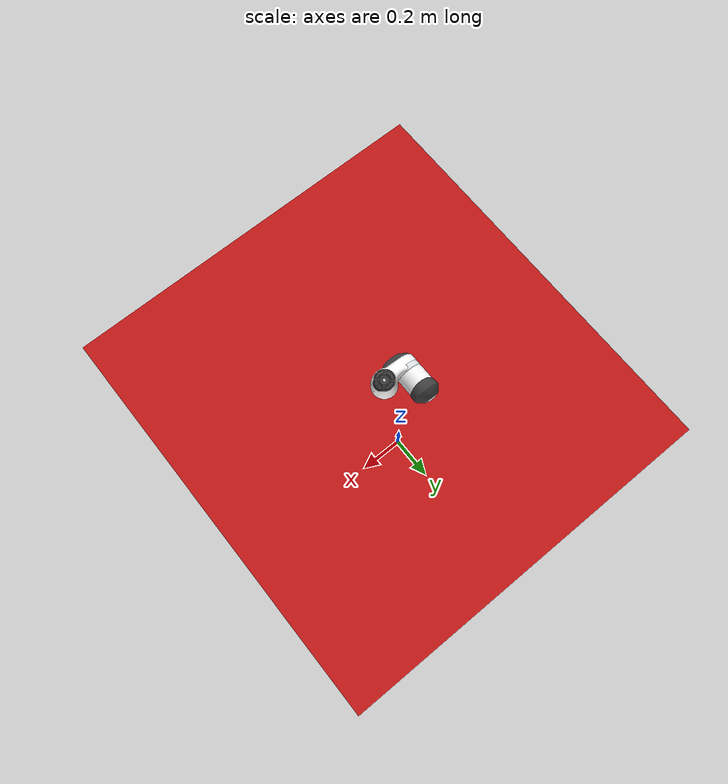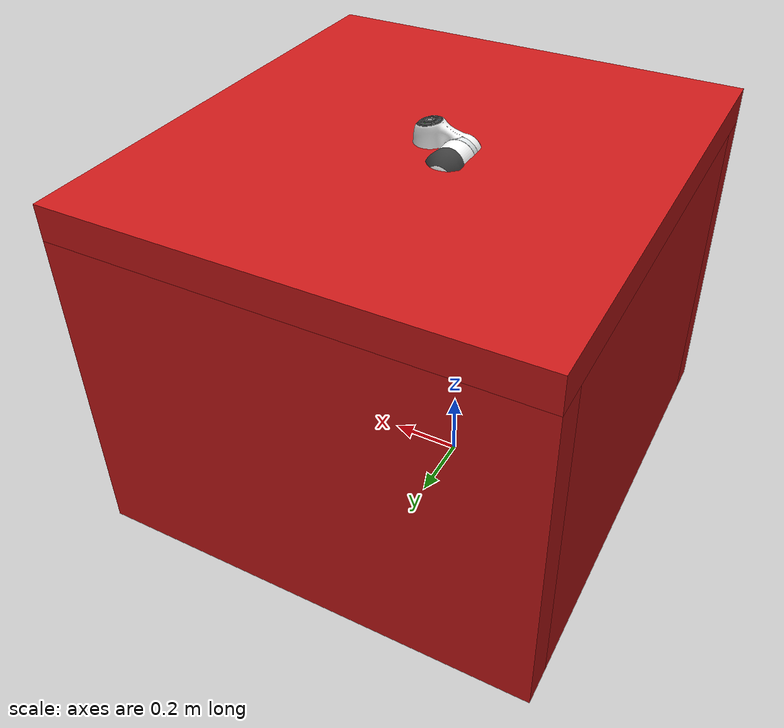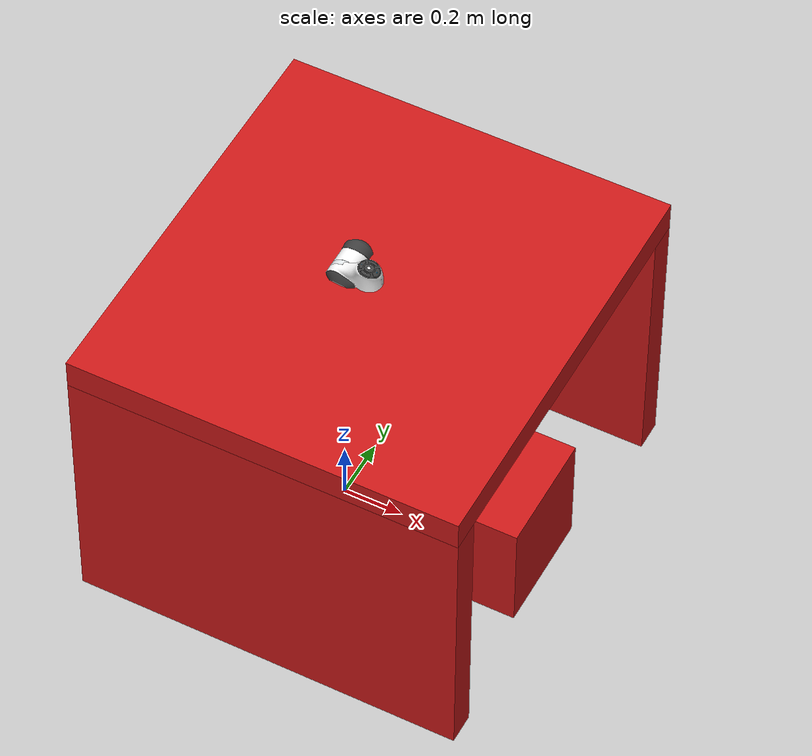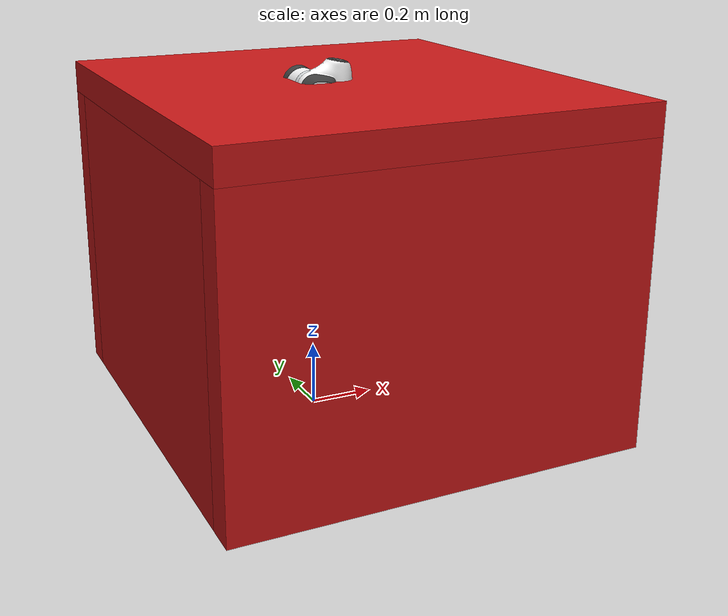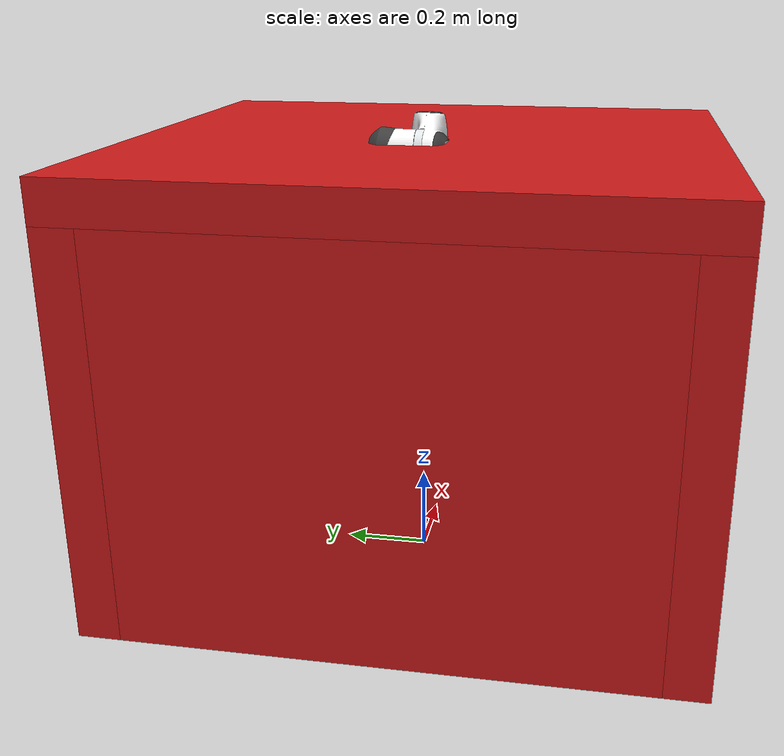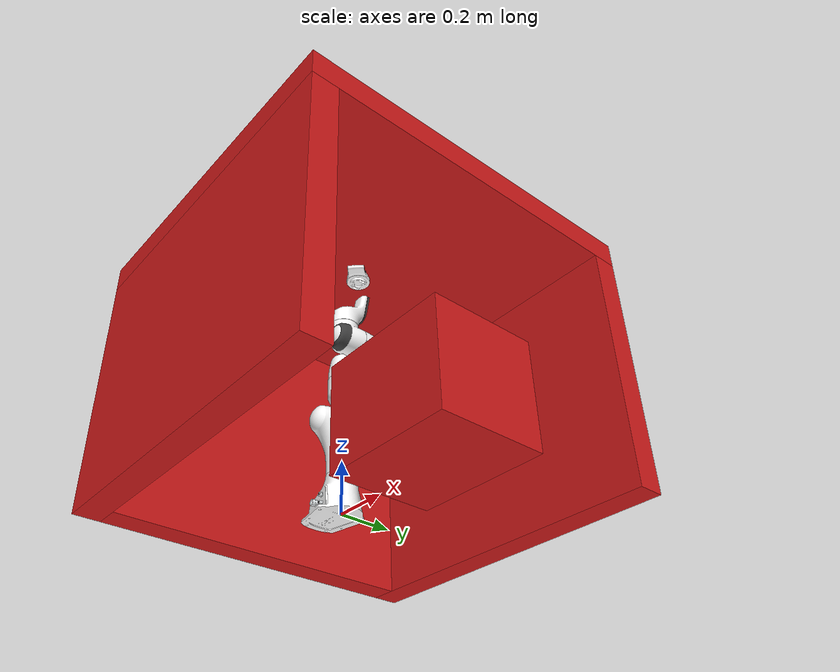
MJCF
<mujoco model="panda nohand">
  <compiler angle="radian" meshdir="assets" autolimits="true"/>

  <option integrator="implicit"/>
  <visual>
    <global azimuth="100" elevation="-45" fovy="45" />
  </visual>

  <default>
    <default class="panda">
      <material specular="0.5" shininess="0.25"/>
      <joint armature="0.1" damping="1" axis="0 0 1" range="-2.8973 2.8973"/>
      <general dyntype="none" biastype="none" ctrlrange="-87 87" forcerange="-87 87"/>
      <default class="finger">
        <joint axis="0 1 0" type="slide" range="0 0.04"/>
      </default>

      <default class="visual">
        <geom type="mesh" contype="0" conaffinity="0" group="2"/>
      </default>
      <default class="collision">
        <geom type="mesh" group="3"/>
      </default>
      <site size="0.001" rgba="0.5 0.5 0.5 0.3" group="4"/>
    </default>
  </default>

  <asset>
    <material class="panda" name="white" rgba="1 1 1 1"/>
    <material class="panda" name="off_white" rgba="0.901961 0.921569 0.929412 1"/>
    <material class="panda" name="black" rgba="0.25 0.25 0.25 1"/>
    <material class="panda" name="green" rgba="0 1 0 1"/>
    <material class="panda" name="light_blue" rgba="0.039216 0.541176 0.780392 1"/>

    <!-- Collision meshes -->
    <mesh name="link0_c" file="link0.stl"/>
    <mesh name="link1_c" file="link1.stl"/>
    <mesh name="link2_c" file="link2.stl"/>
    <mesh name="link3_c" file="link3.stl"/>
    <mesh name="link4_c" file="link4.stl"/>
    <mesh name="link5_c0" file="link5_collision_0.obj"/>
    <mesh name="link5_c1" file="link5_collision_1.obj"/>
    <mesh name="link5_c2" file="link5_collision_2.obj"/>
    <mesh name="link6_c" file="link6.stl"/>
    <mesh name="link7_c" file="link7.stl"/>

    <!-- Visual meshes -->
    <mesh file="link0_0.obj"/>
    <mesh file="link0_1.obj"/>
    <mesh file="link0_2.obj"/>
    <mesh file="link0_3.obj"/>
    <mesh file="link0_4.obj"/>
    <mesh file="link0_5.obj"/>
    <mesh file="link0_7.obj"/>
    <mesh file="link0_8.obj"/>
    <mesh file="link0_9.obj"/>
    <mesh file="link0_10.obj"/>
    <mesh file="link0_11.obj"/>
    <mesh file="link1.obj"/>
    <mesh file="link2.obj"/>
    <mesh file="link3_0.obj"/>
    <mesh file="link3_1.obj"/>
    <mesh file="link3_2.obj"/>
    <mesh file="link3_3.obj"/>
    <mesh file="link4_0.obj"/>
    <mesh file="link4_1.obj"/>
    <mesh file="link4_2.obj"/>
    <mesh file="link4_3.obj"/>
    <mesh file="link5_0.obj"/>
    <mesh file="link5_1.obj"/>
    <mesh file="link5_2.obj"/>
    <mesh file="link6_0.obj"/>
    <mesh file="link6_1.obj"/>
    <mesh file="link6_2.obj"/>
    <mesh file="link6_3.obj"/>
    <mesh file="link6_4.obj"/>
    <mesh file="link6_5.obj"/>
    <mesh file="link6_6.obj"/>
    <mesh file="link6_7.obj"/>
    <mesh file="link6_8.obj"/>
    <mesh file="link6_9.obj"/>
    <mesh file="link6_10.obj"/>
    <mesh file="link6_11.obj"/>
    <mesh file="link6_12.obj"/>
    <mesh file="link6_13.obj"/>
    <mesh file="link6_14.obj"/>
    <mesh file="link6_15.obj"/>
    <mesh file="link6_16.obj"/>
    <mesh file="link7_0.obj"/>
    <mesh file="link7_1.obj"/>
    <mesh file="link7_2.obj"/>
    <mesh file="link7_3.obj"/>
    <mesh file="link7_4.obj"/>
    <mesh file="link7_5.obj"/>
    <mesh file="link7_6.obj"/>
    <mesh file="link7_7.obj"/>
  </asset>

  <worldbody>
    <camera pos="2.532 0.490 1.580" xyaxes="-0.246 0.969 -0.000 -0.471 -0.119 0.874"/>
    <light name="top_right" pos="2 0.5 1" mode="trackcom" dir="-0.5 -0.25 -0.5"/>
    <light name="top_left" pos="2 -0.5 1" mode="trackcom" dir="-0.5 0.25 -0.5"/>
    <body name="link0" childclass="panda">
      <inertial mass="0.629769" pos="-0.041018 -0.00014 0.049974"
          fullinertia="0.00315 0.00388 0.004285 8.2904e-7 0.00015 8.2299e-6"/>
      <geom mesh="link0_0" material="off_white" class="visual"/>
      <geom mesh="link0_1" material="black" class="visual"/>
      <geom mesh="link0_2" material="off_white" class="visual"/>
      <geom mesh="link0_3" material="black" class="visual"/>
      <geom mesh="link0_4" material="off_white" class="visual"/>
      <geom mesh="link0_5" material="black" class="visual"/>
      <geom mesh="link0_7" material="white" class="visual"/>
      <geom mesh="link0_8" material="white" class="visual"/>
      <geom mesh="link0_9" material="black" class="visual"/>
      <geom mesh="link0_10" material="off_white" class="visual"/>
      <geom mesh="link0_11" material="white" class="visual"/>
      <geom mesh="link0_c" class="collision"/>
      <body name="link1" pos="0 0 0.333">
        <inertial mass="4.970684" pos="0.003875 0.002081 -0.04762"
            fullinertia="0.70337 0.70661 0.0091170 -0.00013900 0.0067720 0.019169"/>
        <joint name="joint1"/>
        <geom material="white" mesh="link1" class="visual"/>
        <geom mesh="link1_c" class="collision"/>
        <body name="link2" quat="1 -1 0 0">
          <inertial mass="0.646926" pos="-0.003141 -0.02872 0.003495"
              fullinertia="0.0079620 2.8110e-2 2.5995e-2 -3.925e-3 1.0254e-2 7.04e-4"/>
          <joint name="joint2" range="-1.7628 1.7628"/>
          <geom material="white" mesh="link2" class="visual"/>
          <geom mesh="link2_c" class="collision"/>
          <body name="link3" pos="0 -0.316 0" quat="1 1 0 0">
            <joint name="joint3"/>
            <inertial mass="3.228604" pos="2.7518e-2 3.9252e-2 -6.6502e-2"
                fullinertia="3.7242e-2 3.6155e-2 1.083e-2 -4.761e-3 -1.1396e-2 -1.2805e-2"/>
            <geom mesh="link3_0" material="white" class="visual"/>
            <geom mesh="link3_1" material="white" class="visual"/>
            <geom mesh="link3_2" material="white" class="visual"/>
            <geom mesh="link3_3" material="black" class="visual"/>
            <geom mesh="link3_c" class="collision"/>
            <body name="link4" pos="0.0825 0 0" quat="1 1 0 0">
              <inertial mass="3.587895" pos="-5.317e-2 1.04419e-1 2.7454e-2"
                  fullinertia="2.5853e-2 1.9552e-2 2.8323e-2 7.796e-3 -1.332e-3 8.641e-3"/>
              <joint name="joint4" range="-3.0718 -0.0698"/>
              <geom mesh="link4_0" material="white" class="visual"/>
              <geom mesh="link4_1" material="white" class="visual"/>
              <geom mesh="link4_2" material="black" class="visual"/>
              <geom mesh="link4_3" material="white" class="visual"/>
              <geom mesh="link4_c" class="collision"/>
              <body name="link5" pos="-0.0825 0.384 0" quat="1 -1 0 0">
                <inertial mass="1.225946" pos="-1.1953e-2 4.1065e-2 -3.8437e-2"
                    fullinertia="3.5549e-2 2.9474e-2 8.627e-3 -2.117e-3 -4.037e-3 2.29e-4"/>
                <joint name="joint5"/>
                <geom mesh="link5_0" material="black" class="visual"/>
                <geom mesh="link5_1" material="white" class="visual"/>
                <geom mesh="link5_2" material="white" class="visual"/>
                <geom mesh="link5_c0" class="collision"/>
                <geom mesh="link5_c1" class="collision"/>
                <geom mesh="link5_c2" class="collision"/>
                <body name="link6" quat="1 1 0 0">
                  <inertial mass="1.666555" pos="6.0149e-2 -1.4117e-2 -1.0517e-2"
                      fullinertia="1.964e-3 4.354e-3 5.433e-3 1.09e-4 -1.158e-3 3.41e-4"/>
                  <joint name="joint6" range="-0.0175 3.7525"/>
                  <geom mesh="link6_0" material="off_white" class="visual"/>
                  <geom mesh="link6_1" material="white" class="visual"/>
                  <geom mesh="link6_2" material="black" class="visual"/>
                  <geom mesh="link6_3" material="white" class="visual"/>
                  <geom mesh="link6_4" material="white" class="visual"/>
                  <geom mesh="link6_5" material="white" class="visual"/>
                  <geom mesh="link6_6" material="white" class="visual"/>
                  <geom mesh="link6_7" material="light_blue" class="visual"/>
                  <geom mesh="link6_8" material="light_blue" class="visual"/>
                  <geom mesh="link6_9" material="black" class="visual"/>
                  <geom mesh="link6_10" material="black" class="visual"/>
                  <geom mesh="link6_11" material="white" class="visual"/>
                  <geom mesh="link6_12" material="green" class="visual"/>
                  <geom mesh="link6_13" material="white" class="visual"/>
                  <geom mesh="link6_14" material="black" class="visual"/>
                  <geom mesh="link6_15" material="black" class="visual"/>
                  <geom mesh="link6_16" material="white" class="visual"/>
                  <geom mesh="link6_c" class="collision"/>
                  <body name="link7" pos="0.088 0 0" quat="1 1 0 0">
                    <inertial mass="7.35522e-01" pos="1.0517e-2 -4.252e-3 6.1597e-2"
                        fullinertia="1.2516e-2 1.0027e-2 4.815e-3 -4.28e-4 -1.196e-3 -7.41e-4"/>
                    <joint name="joint7"/>
                    <geom mesh="link7_0" material="white" class="visual"/>
                    <geom mesh="link7_1" material="black" class="visual"/>
                    <geom mesh="link7_2" material="black" class="visual"/>
                    <geom mesh="link7_3" material="black" class="visual"/>
                    <geom mesh="link7_4" material="black" class="visual"/>
                    <geom mesh="link7_5" material="black" class="visual"/>
                    <geom mesh="link7_6" material="black" class="visual"/>
                    <geom mesh="link7_7" material="white" class="visual"/>
                    <geom mesh="link7_c" class="collision"/>
                    <site name="attachment_site" pos="0 0 0.107" quat="0.3826834 0 0 0.9238795"/>
                    <body name="hand" pos="0 0 0.107" quat="1 0 0 0"/>
                  </body>
                </body>
              </body>
            </body>
          </body>
        </body>
      </body>
    </body>
    <body name="obstacles" pos="0 0 0" quat="1 0 0 0">
    <geom name="top" pos="0.1 0 1.0" type="box" size="0.65 0.7 0.05" rgba="0.8 0.1 0.1 1" class="visual" contype="0" conaffinity="1"/>
    <geom name="left" pos="0.1 -0.65 0.475" type="box" size="0.65 0.05 0.475" rgba="0.8 0.1 0.1 1" class="visual" contype="0" conaffinity="1"/>
    <geom name="right" pos="0.1 0.65 0.475" type="box" size="0.65 0.05 0.475" rgba="0.8 0.1 0.1 1" class="visual" contype="0" conaffinity="1"/>
    <geom name="back" pos="-0.5 0 0.475" type="box" size="0.05 0.6 0.475" rgba="0.8 0.1 0.1 1" class="visual" contype="0" conaffinity="1"/>
    <geom name="box" pos="0.45 0 0.2" type="box" size="0.25 0.2 0.2" rgba="0.8 0.1 0.1 1" class="visual" contype="0" conaffinity="1"/>

    </body>
  </worldbody>

  <actuator>
    <general class="panda" name="actuator1" joint="joint1" gainprm="1"/>
    <general class="panda" name="actuator2" joint="joint2" gainprm="1"/>
    <general class="panda" name="actuator3" joint="joint3" gainprm="1"/>
    <general class="panda" name="actuator4" joint="joint4" gainprm="1"/>
    <general class="panda" name="actuator5" joint="joint5" gainprm="1" ctrlrange="-12 12" forcerange="-12 12"/>
    <general class="panda" name="actuator6" joint="joint6" gainprm="1" forcerange="-12 12" ctrlrange="-12 12"/>
    <general class="panda" name="actuator7" joint="joint7" gainprm="1" ctrlrange="-12 12" forcerange="-12 12"/>
    <!-- Remap original ctrlrange (0, 0.04) to (0, 255): 0.04 * 100 / 255 = 0.01568627451 -->
  </actuator>

  <keyframe>
    <key name="home" qpos="-1.57079 -1.57079 1.57079 -1.57079 0 1.57079 0"
        ctrl="0 0 0 -1.57079 0 1.57079 -0.7853"/>
  </keyframe>
</mujoco>
